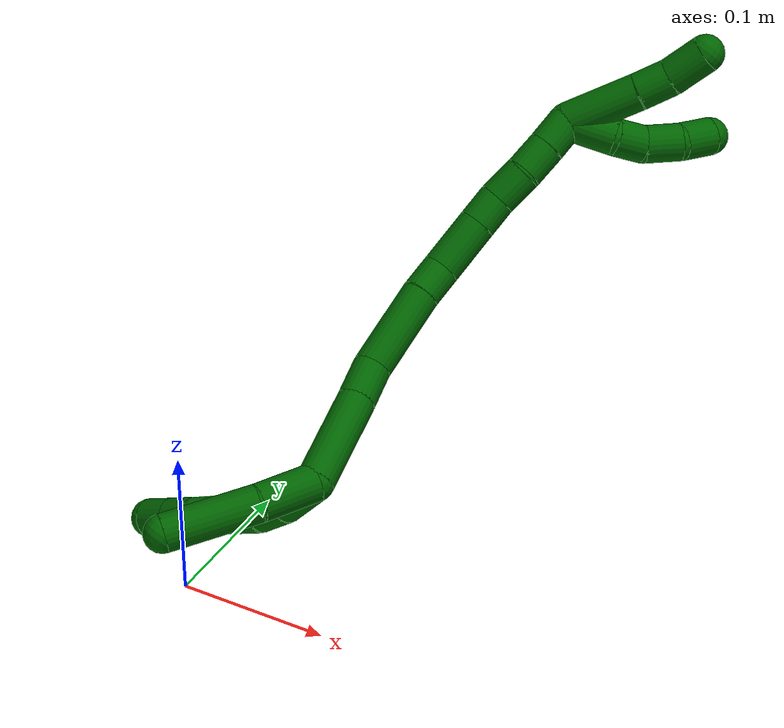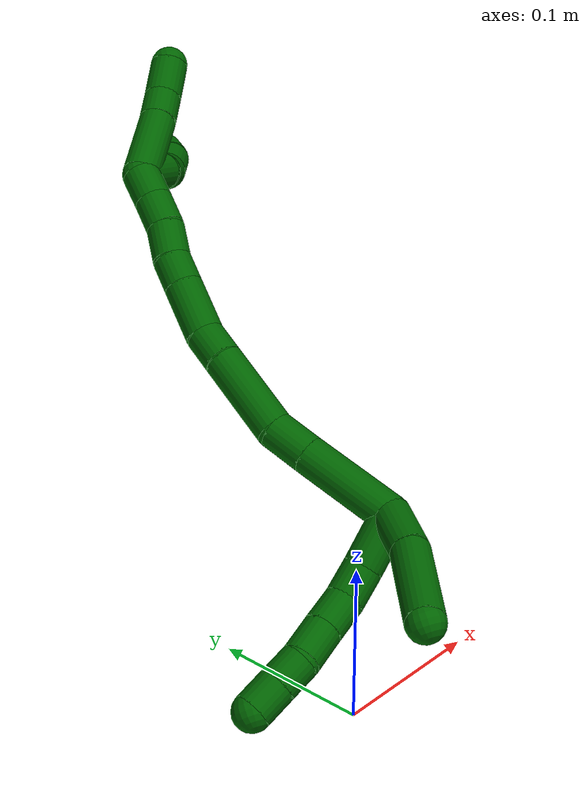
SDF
<sdf version="1.7">
 <world name="default">
  <model name="6">
   <static>0</static>
   <link name="6">
    <collision name="collision-cylinder-e_1_2_8">
     <pose>0.004038 -0.012772 -0.011999 2.325 0.226499 0.51418</pose>
     <geometry><cylinder><radius>0.0125</radius><length>0.035966</length></cylinder></geometry>
     <surface>
      <friction><ode><mu>1.16</mu><mu2>1.16</mu2><slip1>0</slip1><slip2>0</slip2></ode></friction>
      <contact><ode><kp>1e+06</kp><kd>1</kd><max_vel>0</max_vel><min_depth>0.001</min_depth></ode></contact>
     </surface>
    </collision>
    <visual name="visual-cylinder-e_1_2_8">
     <pose>0.004038 -0.012772 -0.011999 2.325 0.226499 0.51418</pose>
     <geometry><cylinder><radius>0.0125</radius><length>0.035966</length></cylinder></geometry>
     <material><ambient>0 0.392157 0.003922 1</ambient></material>
    </visual>
    <collision name="collision-cylinder-e_2_8_9">
     <pose>0.013143 -0.032367 -0.031766 2.4209 0.455601 1.10312</pose>
     <geometry><cylinder><radius>0.0125</radius><length>0.02303</length></cylinder></geometry>
     <surface>
      <friction><ode><mu>1.16</mu><mu2>1.16</mu2><slip1>0</slip1><slip2>0</slip2></ode></friction>
      <contact><ode><kp>1e+06</kp><kd>1</kd><max_vel>0</max_vel><min_depth>0.001</min_depth></ode></contact>
     </surface>
    </collision>
    <visual name="visual-cylinder-e_2_8_9">
     <pose>0.013143 -0.032367 -0.031766 2.4209 0.455601 1.10312</pose>
     <geometry><cylinder><radius>0.0125</radius><length>0.02303</length></cylinder></geometry>
     <material><ambient>0 0.392157 0.003922 1</ambient></material>
    </visual>
    <collision name="collision-cylinder-e_3_9_10">
     <pose>0.026744 -0.044448 -0.046627 2.50359 0.768492 1.77176</pose>
     <geometry><cylinder><radius>0.0125</radius><length>0.024556</length></cylinder></geometry>
     <surface>
      <friction><ode><mu>1.16</mu><mu2>1.16</mu2><slip1>0</slip1><slip2>0</slip2></ode></friction>
      <contact><ode><kp>1e+06</kp><kd>1</kd><max_vel>0</max_vel><min_depth>0.001</min_depth></ode></contact>
     </surface>
    </collision>
    <visual name="visual-cylinder-e_3_9_10">
     <pose>0.026744 -0.044448 -0.046627 2.50359 0.768492 1.77176</pose>
     <geometry><cylinder><radius>0.0125</radius><length>0.024556</length></cylinder></geometry>
     <material><ambient>0 0.392157 0.003922 1</ambient></material>
    </visual>
    <collision name="collision-cylinder-e_4_10_11">
     <pose>0.043773 -0.054832 -0.060979 2.52687 0.762799 1.80252</pose>
     <geometry><cylinder><radius>0.0125</radius><length>0.024591</length></cylinder></geometry>
     <surface>
      <friction><ode><mu>1.16</mu><mu2>1.16</mu2><slip1>0</slip1><slip2>0</slip2></ode></friction>
      <contact><ode><kp>1e+06</kp><kd>1</kd><max_vel>0</max_vel><min_depth>0.001</min_depth></ode></contact>
     </surface>
    </collision>
    <visual name="visual-cylinder-e_4_10_11">
     <pose>0.043773 -0.054832 -0.060979 2.52687 0.762799 1.80252</pose>
     <geometry><cylinder><radius>0.0125</radius><length>0.024591</length></cylinder></geometry>
     <material><ambient>0 0.392157 0.003922 1</ambient></material>
    </visual>
    <collision name="collision-cylinder-e_5_11_12">
     <pose>0.058286 -0.066534 -0.073304 2.22697 0.627254 1.16545</pose>
     <geometry><cylinder><radius>0.0125</radius><length>0.020504</length></cylinder></geometry>
     <surface>
      <friction><ode><mu>1.16</mu><mu2>1.16</mu2><slip1>0</slip1><slip2>0</slip2></ode></friction>
      <contact><ode><kp>1e+06</kp><kd>1</kd><max_vel>0</max_vel><min_depth>0.001</min_depth></ode></contact>
     </surface>
    </collision>
    <visual name="visual-cylinder-e_5_11_12">
     <pose>0.058286 -0.066534 -0.073304 2.22697 0.627254 1.16545</pose>
     <geometry><cylinder><radius>0.0125</radius><length>0.020504</length></cylinder></geometry>
     <material><ambient>0 0.392157 0.003922 1</ambient></material>
    </visual>
    <collision name="collision-cylinder-e_6_12_6">
     <pose>0.070652 -0.079866 -0.083664 2.23568 0.636901 1.19073</pose>
     <geometry><cylinder><radius>0.0125</radius><length>0.021354</length></cylinder></geometry>
     <surface>
      <friction><ode><mu>1.16</mu><mu2>1.16</mu2><slip1>0</slip1><slip2>0</slip2></ode></friction>
      <contact><ode><kp>1e+06</kp><kd>1</kd><max_vel>0</max_vel><min_depth>0.001</min_depth></ode></contact>
     </surface>
    </collision>
    <visual name="visual-cylinder-e_6_12_6">
     <pose>0.070652 -0.079866 -0.083664 2.23568 0.636901 1.19073</pose>
     <geometry><cylinder><radius>0.0125</radius><length>0.021354</length></cylinder></geometry>
     <material><ambient>0 0.392157 0.003922 1</ambient></material>
    </visual>
    <collision name="collision-cylinder-e_1_2_13">
     <pose>0.009697 0.00714 -0.014914 -2.69511 0.530379 -1.74906</pose>
     <geometry><cylinder><radius>0.0125</radius><length>0.038337</length></cylinder></geometry>
     <surface>
      <friction><ode><mu>1.16</mu><mu2>1.16</mu2><slip1>0</slip1><slip2>0</slip2></ode></friction>
      <contact><ode><kp>1e+06</kp><kd>1</kd><max_vel>0</max_vel><min_depth>0.001</min_depth></ode></contact>
     </surface>
    </collision>
    <visual name="visual-cylinder-e_1_2_13">
     <pose>0.009697 0.00714 -0.014914 -2.69511 0.530379 -1.74906</pose>
     <geometry><cylinder><radius>0.0125</radius><length>0.038337</length></cylinder></geometry>
     <material><ambient>0 0.392157 0.003922 1</ambient></material>
    </visual>
    <collision name="collision-cylinder-e_2_13_5">
     <pose>0.03726 0.020756 -0.054106 -2.88088 0.618127 -2.36239</pose>
     <geometry><cylinder><radius>0.0125</radius><length>0.061663</length></cylinder></geometry>
     <surface>
      <friction><ode><mu>1.16</mu><mu2>1.16</mu2><slip1>0</slip1><slip2>0</slip2></ode></friction>
      <contact><ode><kp>1e+06</kp><kd>1</kd><max_vel>0</max_vel><min_depth>0.001</min_depth></ode></contact>
     </surface>
    </collision>
    <visual name="visual-cylinder-e_2_13_5">
     <pose>0.03726 0.020756 -0.054106 -2.88088 0.618127 -2.36239</pose>
     <geometry><cylinder><radius>0.0125</radius><length>0.061663</length></cylinder></geometry>
     <material><ambient>0 0.392157 0.003922 1</ambient></material>
    </visual>
    <collision name="collision-cylinder-e_1_2_14">
     <pose>0.00553 -0.017244 0.026881 0.570366 0.17144 0.050375</pose>
     <geometry><cylinder><radius>0.0125</radius><length>0.064824</length></cylinder></geometry>
     <surface>
      <friction><ode><mu>1.16</mu><mu2>1.16</mu2><slip1>0</slip1><slip2>0</slip2></ode></friction>
      <contact><ode><kp>1e+06</kp><kd>1</kd><max_vel>0</max_vel><min_depth>0.001</min_depth></ode></contact>
     </surface>
    </collision>
    <visual name="visual-cylinder-e_1_2_14">
     <pose>0.00553 -0.017244 0.026881 0.570366 0.17144 0.050375</pose>
     <geometry><cylinder><radius>0.0125</radius><length>0.064824</length></cylinder></geometry>
     <material><ambient>0 0.392157 0.003922 1</ambient></material>
    </visual>
    <collision name="collision-cylinder-e_2_14_15">
     <pose>0.013762 -0.041389 0.065172 0.54397 0.200016 0.055956</pose>
     <geometry><cylinder><radius>0.0125</radius><length>0.02721</length></cylinder></geometry>
     <surface>
      <friction><ode><mu>1.16</mu><mu2>1.16</mu2><slip1>0</slip1><slip2>0</slip2></ode></friction>
      <contact><ode><kp>1e+06</kp><kd>1</kd><max_vel>0</max_vel><min_depth>0.001</min_depth></ode></contact>
     </surface>
    </collision>
    <visual name="visual-cylinder-e_2_14_15">
     <pose>0.013762 -0.041389 0.065172 0.54397 0.200016 0.055956</pose>
     <geometry><cylinder><radius>0.0125</radius><length>0.02721</length></cylinder></geometry>
     <material><ambient>0 0.392157 0.003922 1</ambient></material>
    </visual>
    <collision name="collision-cylinder-e_3_15_16">
     <pose>0.018222 -0.05713 0.104242 0.309348 0.060434 0.009426</pose>
     <geometry><cylinder><radius>0.0125</radius><length>0.058184</length></cylinder></geometry>
     <surface>
      <friction><ode><mu>1.16</mu><mu2>1.16</mu2><slip1>0</slip1><slip2>0</slip2></ode></friction>
      <contact><ode><kp>1e+06</kp><kd>1</kd><max_vel>0</max_vel><min_depth>0.001</min_depth></ode></contact>
     </surface>
    </collision>
    <visual name="visual-cylinder-e_3_15_16">
     <pose>0.018222 -0.05713 0.104242 0.309348 0.060434 0.009426</pose>
     <geometry><cylinder><radius>0.0125</radius><length>0.058184</length></cylinder></geometry>
     <material><ambient>0 0.392157 0.003922 1</ambient></material>
    </visual>
    <collision name="collision-cylinder-e_4_16_17">
     <pose>0.019769 -0.069697 0.142348 0.342639 -0.018999 -0.003287</pose>
     <geometry><cylinder><radius>0.0125</radius><length>0.022185</length></cylinder></geometry>
     <surface>
      <friction><ode><mu>1.16</mu><mu2>1.16</mu2><slip1>0</slip1><slip2>0</slip2></ode></friction>
      <contact><ode><kp>1e+06</kp><kd>1</kd><max_vel>0</max_vel><min_depth>0.001</min_depth></ode></contact>
     </surface>
    </collision>
    <visual name="visual-cylinder-e_4_16_17">
     <pose>0.019769 -0.069697 0.142348 0.342639 -0.018999 -0.003287</pose>
     <geometry><cylinder><radius>0.0125</radius><length>0.022185</length></cylinder></geometry>
     <material><ambient>0 0.392157 0.003922 1</ambient></material>
    </visual>
    <collision name="collision-cylinder-e_5_17_18">
     <pose>0.018929 -0.075804 0.171432 0.127049 -0.03348 -0.00213</pose>
     <geometry><cylinder><radius>0.0125</radius><length>0.037601</length></cylinder></geometry>
     <surface>
      <friction><ode><mu>1.16</mu><mu2>1.16</mu2><slip1>0</slip1><slip2>0</slip2></ode></friction>
      <contact><ode><kp>1e+06</kp><kd>1</kd><max_vel>0</max_vel><min_depth>0.001</min_depth></ode></contact>
     </surface>
    </collision>
    <visual name="visual-cylinder-e_5_17_18">
     <pose>0.018929 -0.075804 0.171432 0.127049 -0.03348 -0.00213</pose>
     <geometry><cylinder><radius>0.0125</radius><length>0.037601</length></cylinder></geometry>
     <material><ambient>0 0.392157 0.003922 1</ambient></material>
    </visual>
    <collision name="collision-cylinder-e_6_18_19">
     <pose>0.017907 -0.079496 0.200447 0.125734 -0.037496 -0.002361</pose>
     <geometry><cylinder><radius>0.0125</radius><length>0.020932</length></cylinder></geometry>
     <surface>
      <friction><ode><mu>1.16</mu><mu2>1.16</mu2><slip1>0</slip1><slip2>0</slip2></ode></friction>
      <contact><ode><kp>1e+06</kp><kd>1</kd><max_vel>0</max_vel><min_depth>0.001</min_depth></ode></contact>
     </surface>
    </collision>
    <visual name="visual-cylinder-e_6_18_19">
     <pose>0.017907 -0.079496 0.200447 0.125734 -0.037496 -0.002361</pose>
     <geometry><cylinder><radius>0.0125</radius><length>0.020932</length></cylinder></geometry>
     <material><ambient>0 0.392157 0.003922 1</ambient></material>
    </visual>
    <collision name="collision-cylinder-e_7_19_20">
     <pose>0.015643 -0.080577 0.222713 -0.019377 -0.156085 0.001515</pose>
     <geometry><cylinder><radius>0.0125</radius><length>0.024076</length></cylinder></geometry>
     <surface>
      <friction><ode><mu>1.16</mu><mu2>1.16</mu2><slip1>0</slip1><slip2>0</slip2></ode></friction>
      <contact><ode><kp>1e+06</kp><kd>1</kd><max_vel>0</max_vel><min_depth>0.001</min_depth></ode></contact>
     </surface>
    </collision>
    <visual name="visual-cylinder-e_7_19_20">
     <pose>0.015643 -0.080577 0.222713 -0.019377 -0.156085 0.001515</pose>
     <geometry><cylinder><radius>0.0125</radius><length>0.024076</length></cylinder></geometry>
     <material><ambient>0 0.392157 0.003922 1</ambient></material>
    </visual>
    <collision name="collision-cylinder-e_8_20_21">
     <pose>0.012871 -0.082072 0.245737 0.153738 -0.079756 -0.006146</pose>
     <geometry><cylinder><radius>0.0125</radius><length>0.022608</length></cylinder></geometry>
     <surface>
      <friction><ode><mu>1.16</mu><mu2>1.16</mu2><slip1>0</slip1><slip2>0</slip2></ode></friction>
      <contact><ode><kp>1e+06</kp><kd>1</kd><max_vel>0</max_vel><min_depth>0.001</min_depth></ode></contact>
     </surface>
    </collision>
    <visual name="visual-cylinder-e_8_20_21">
     <pose>0.012871 -0.082072 0.245737 0.153738 -0.079756 -0.006146</pose>
     <geometry><cylinder><radius>0.0125</radius><length>0.022608</length></cylinder></geometry>
     <material><ambient>0 0.392157 0.003922 1</ambient></material>
    </visual>
    <collision name="collision-cylinder-e_9_21_1">
     <pose>0.011449 -0.085611 0.267902 0.162937 -0.046626 -0.003808</pose>
     <geometry><cylinder><radius>0.0125</radius><length>0.022379</length></cylinder></geometry>
     <surface>
      <friction><ode><mu>1.16</mu><mu2>1.16</mu2><slip1>0</slip1><slip2>0</slip2></ode></friction>
      <contact><ode><kp>1e+06</kp><kd>1</kd><max_vel>0</max_vel><min_depth>0.001</min_depth></ode></contact>
     </surface>
    </collision>
    <visual name="visual-cylinder-e_9_21_1">
     <pose>0.011449 -0.085611 0.267902 0.162937 -0.046626 -0.003808</pose>
     <geometry><cylinder><radius>0.0125</radius><length>0.022379</length></cylinder></geometry>
     <material><ambient>0 0.392157 0.003922 1</ambient></material>
    </visual>
    <collision name="collision-cylinder-e_1_1_22">
     <pose>-0.004341 -0.088344 0.283801 0.186588 -1.25695 -0.135795</pose>
     <geometry><cylinder><radius>0.0125</radius><length>0.032106</length></cylinder></geometry>
     <surface>
      <friction><ode><mu>1.16</mu><mu2>1.16</mu2><slip1>0</slip1><slip2>0</slip2></ode></friction>
      <contact><ode><kp>1e+06</kp><kd>1</kd><max_vel>0</max_vel><min_depth>0.001</min_depth></ode></contact>
     </surface>
    </collision>
    <visual name="visual-cylinder-e_1_1_22">
     <pose>-0.004341 -0.088344 0.283801 0.186588 -1.25695 -0.135795</pose>
     <geometry><cylinder><radius>0.0125</radius><length>0.032106</length></cylinder></geometry>
     <material><ambient>0 0.392157 0.003922 1</ambient></material>
    </visual>
    <collision name="collision-cylinder-e_2_22_23">
     <pose>-0.028441 -0.092727 0.292498 0.735631 -1.04184 -0.435215</pose>
     <geometry><cylinder><radius>0.0125</radius><length>0.020457</length></cylinder></geometry>
     <surface>
      <friction><ode><mu>1.16</mu><mu2>1.16</mu2><slip1>0</slip1><slip2>0</slip2></ode></friction>
      <contact><ode><kp>1e+06</kp><kd>1</kd><max_vel>0</max_vel><min_depth>0.001</min_depth></ode></contact>
     </surface>
    </collision>
    <visual name="visual-cylinder-e_2_22_23">
     <pose>-0.028441 -0.092727 0.292498 0.735631 -1.04184 -0.435215</pose>
     <geometry><cylinder><radius>0.0125</radius><length>0.020457</length></cylinder></geometry>
     <material><ambient>0 0.392157 0.003922 1</ambient></material>
    </visual>
    <collision name="collision-cylinder-e_3_23_24">
     <pose>-0.046445 -0.098732 0.304262 0.309885 -0.83332 -0.138035</pose>
     <geometry><cylinder><radius>0.0125</radius><length>0.024788</length></cylinder></geometry>
     <surface>
      <friction><ode><mu>1.16</mu><mu2>1.16</mu2><slip1>0</slip1><slip2>0</slip2></ode></friction>
      <contact><ode><kp>1e+06</kp><kd>1</kd><max_vel>0</max_vel><min_depth>0.001</min_depth></ode></contact>
     </surface>
    </collision>
    <visual name="visual-cylinder-e_3_23_24">
     <pose>-0.046445 -0.098732 0.304262 0.309885 -0.83332 -0.138035</pose>
     <geometry><cylinder><radius>0.0125</radius><length>0.024788</length></cylinder></geometry>
     <material><ambient>0 0.392157 0.003922 1</ambient></material>
    </visual>
    <collision name="collision-cylinder-e_4_24_4">
     <pose>-0.062074 -0.10659 0.319834 0.608246 -0.606581 -0.195814</pose>
     <geometry><cylinder><radius>0.0125</radius><length>0.022649</length></cylinder></geometry>
     <surface>
      <friction><ode><mu>1.16</mu><mu2>1.16</mu2><slip1>0</slip1><slip2>0</slip2></ode></friction>
      <contact><ode><kp>1e+06</kp><kd>1</kd><max_vel>0</max_vel><min_depth>0.001</min_depth></ode></contact>
     </surface>
    </collision>
    <visual name="visual-cylinder-e_4_24_4">
     <pose>-0.062074 -0.10659 0.319834 0.608246 -0.606581 -0.195814</pose>
     <geometry><cylinder><radius>0.0125</radius><length>0.022649</length></cylinder></geometry>
     <material><ambient>0 0.392157 0.003922 1</ambient></material>
    </visual>
    <collision name="collision-cylinder-e_1_1_25">
     <pose>-0.002179 -0.082832 0.299718 -0.217457 -0.551869 0.061799</pose>
     <geometry><cylinder><radius>0.0125</radius><length>0.049999</length></cylinder></geometry>
     <surface>
      <friction><ode><mu>1.16</mu><mu2>1.16</mu2><slip1>0</slip1><slip2>0</slip2></ode></friction>
      <contact><ode><kp>1e+06</kp><kd>1</kd><max_vel>0</max_vel><min_depth>0.001</min_depth></ode></contact>
     </surface>
    </collision>
    <visual name="visual-cylinder-e_1_1_25">
     <pose>-0.002179 -0.082832 0.299718 -0.217457 -0.551869 0.061799</pose>
     <geometry><cylinder><radius>0.0125</radius><length>0.049999</length></cylinder></geometry>
     <material><ambient>0 0.392157 0.003922 1</ambient></material>
    </visual>
    <collision name="collision-cylinder-e_2_25_26">
     <pose>-0.020879 -0.076737 0.33018 -0.153938 -0.519011 0.040944</pose>
     <geometry><cylinder><radius>0.0125</radius><length>0.022551</length></cylinder></geometry>
     <surface>
      <friction><ode><mu>1.16</mu><mu2>1.16</mu2><slip1>0</slip1><slip2>0</slip2></ode></friction>
      <contact><ode><kp>1e+06</kp><kd>1</kd><max_vel>0</max_vel><min_depth>0.001</min_depth></ode></contact>
     </surface>
    </collision>
    <visual name="visual-cylinder-e_2_25_26">
     <pose>-0.020879 -0.076737 0.33018 -0.153938 -0.519011 0.040944</pose>
     <geometry><cylinder><radius>0.0125</radius><length>0.022551</length></cylinder></geometry>
     <material><ambient>0 0.392157 0.003922 1</ambient></material>
    </visual>
    <collision name="collision-cylinder-e_3_26_3">
     <pose>-0.031147 -0.071234 0.352123 -0.315365 -0.347599 0.055818</pose>
     <geometry><cylinder><radius>0.0125</radius><length>0.02745</length></cylinder></geometry>
     <surface>
      <friction><ode><mu>1.16</mu><mu2>1.16</mu2><slip1>0</slip1><slip2>0</slip2></ode></friction>
      <contact><ode><kp>1e+06</kp><kd>1</kd><max_vel>0</max_vel><min_depth>0.001</min_depth></ode></contact>
     </surface>
    </collision>
    <visual name="visual-cylinder-e_3_26_3">
     <pose>-0.031147 -0.071234 0.352123 -0.315365 -0.347599 0.055818</pose>
     <geometry><cylinder><radius>0.0125</radius><length>0.02745</length></cylinder></geometry>
     <material><ambient>0 0.392157 0.003922 1</ambient></material>
    </visual>
    <collision name="collision-sphere-3">
     <pose>-0.035822 -0.067231 0.364391 0 -0 0</pose>
     <geometry><sphere><radius>0.0125</radius></sphere></geometry>
     <surface>
      <friction><ode><mu>1.16</mu><mu2>1.16</mu2><slip1>0</slip1><slip2>0</slip2></ode></friction>
      <contact><ode><kp>1e+06</kp><kd>1</kd><max_vel>0</max_vel><min_depth>0.001</min_depth></ode></contact>
     </surface>
    </collision>
    <visual name="visual-sphere-3">
     <pose>-0.035822 -0.067231 0.364391 0 -0 0</pose>
     <geometry><sphere><radius>0.0125</radius></sphere></geometry>
     <material><ambient>0 0.392157 0.003922 1</ambient></material>
    </visual>
    <collision name="collision-sphere-26">
     <pose>-0.026471 -0.075236 0.339855 0 -0 0</pose>
     <geometry><sphere><radius>0.0125</radius></sphere></geometry>
     <surface>
      <friction><ode><mu>1.16</mu><mu2>1.16</mu2><slip1>0</slip1><slip2>0</slip2></ode></friction>
      <contact><ode><kp>1e+06</kp><kd>1</kd><max_vel>0</max_vel><min_depth>0.001</min_depth></ode></contact>
     </surface>
    </collision>
    <visual name="visual-sphere-26">
     <pose>-0.026471 -0.075236 0.339855 0 -0 0</pose>
     <geometry><sphere><radius>0.0125</radius></sphere></geometry>
     <material><ambient>0 0.392157 0.003922 1</ambient></material>
    </visual>
    <collision name="collision-sphere-25">
     <pose>-0.015286 -0.078239 0.320505 0 -0 0</pose>
     <geometry><sphere><radius>0.0125</radius></sphere></geometry>
     <surface>
      <friction><ode><mu>1.16</mu><mu2>1.16</mu2><slip1>0</slip1><slip2>0</slip2></ode></friction>
      <contact><ode><kp>1e+06</kp><kd>1</kd><max_vel>0</max_vel><min_depth>0.001</min_depth></ode></contact>
     </surface>
    </collision>
    <visual name="visual-sphere-25">
     <pose>-0.015286 -0.078239 0.320505 0 -0 0</pose>
     <geometry><sphere><radius>0.0125</radius></sphere></geometry>
     <material><ambient>0 0.392157 0.003922 1</ambient></material>
    </visual>
    <collision name="collision-sphere-4">
     <pose>-0.06853 -0.111907 0.32747 0 -0 0</pose>
     <geometry><sphere><radius>0.0125</radius></sphere></geometry>
     <surface>
      <friction><ode><mu>1.16</mu><mu2>1.16</mu2><slip1>0</slip1><slip2>0</slip2></ode></friction>
      <contact><ode><kp>1e+06</kp><kd>1</kd><max_vel>0</max_vel><min_depth>0.001</min_depth></ode></contact>
     </surface>
    </collision>
    <visual name="visual-sphere-4">
     <pose>-0.06853 -0.111907 0.32747 0 -0 0</pose>
     <geometry><sphere><radius>0.0125</radius></sphere></geometry>
     <material><ambient>0 0.392157 0.003922 1</ambient></material>
    </visual>
    <collision name="collision-sphere-24">
     <pose>-0.055618 -0.101273 0.312199 0 -0 0</pose>
     <geometry><sphere><radius>0.0125</radius></sphere></geometry>
     <surface>
      <friction><ode><mu>1.16</mu><mu2>1.16</mu2><slip1>0</slip1><slip2>0</slip2></ode></friction>
      <contact><ode><kp>1e+06</kp><kd>1</kd><max_vel>0</max_vel><min_depth>0.001</min_depth></ode></contact>
     </surface>
    </collision>
    <visual name="visual-sphere-24">
     <pose>-0.055618 -0.101273 0.312199 0 -0 0</pose>
     <geometry><sphere><radius>0.0125</radius></sphere></geometry>
     <material><ambient>0 0.392157 0.003922 1</ambient></material>
    </visual>
    <collision name="collision-sphere-23">
     <pose>-0.037271 -0.096191 0.296325 0 -0 0</pose>
     <geometry><sphere><radius>0.0125</radius></sphere></geometry>
     <surface>
      <friction><ode><mu>1.16</mu><mu2>1.16</mu2><slip1>0</slip1><slip2>0</slip2></ode></friction>
      <contact><ode><kp>1e+06</kp><kd>1</kd><max_vel>0</max_vel><min_depth>0.001</min_depth></ode></contact>
     </surface>
    </collision>
    <visual name="visual-sphere-23">
     <pose>-0.037271 -0.096191 0.296325 0 -0 0</pose>
     <geometry><sphere><radius>0.0125</radius></sphere></geometry>
     <material><ambient>0 0.392157 0.003922 1</ambient></material>
    </visual>
    <collision name="collision-sphere-22">
     <pose>-0.01961 -0.089263 0.288671 0 -0 0</pose>
     <geometry><sphere><radius>0.0125</radius></sphere></geometry>
     <surface>
      <friction><ode><mu>1.16</mu><mu2>1.16</mu2><slip1>0</slip1><slip2>0</slip2></ode></friction>
      <contact><ode><kp>1e+06</kp><kd>1</kd><max_vel>0</max_vel><min_depth>0.001</min_depth></ode></contact>
     </surface>
    </collision>
    <visual name="visual-sphere-22">
     <pose>-0.01961 -0.089263 0.288671 0 -0 0</pose>
     <geometry><sphere><radius>0.0125</radius></sphere></geometry>
     <material><ambient>0 0.392157 0.003922 1</ambient></material>
    </visual>
    <collision name="collision-sphere-1">
     <pose>0.010928 -0.087424 0.278932 0 -0 0</pose>
     <geometry><sphere><radius>0.0125</radius></sphere></geometry>
     <surface>
      <friction><ode><mu>1.16</mu><mu2>1.16</mu2><slip1>0</slip1><slip2>0</slip2></ode></friction>
      <contact><ode><kp>1e+06</kp><kd>1</kd><max_vel>0</max_vel><min_depth>0.001</min_depth></ode></contact>
     </surface>
    </collision>
    <visual name="visual-sphere-1">
     <pose>0.010928 -0.087424 0.278932 0 -0 0</pose>
     <geometry><sphere><radius>0.0125</radius></sphere></geometry>
     <material><ambient>0 0.392157 0.003922 1</ambient></material>
    </visual>
    <collision name="collision-sphere-21">
     <pose>0.011971 -0.083798 0.256873 0 -0 0</pose>
     <geometry><sphere><radius>0.0125</radius></sphere></geometry>
     <surface>
      <friction><ode><mu>1.16</mu><mu2>1.16</mu2><slip1>0</slip1><slip2>0</slip2></ode></friction>
      <contact><ode><kp>1e+06</kp><kd>1</kd><max_vel>0</max_vel><min_depth>0.001</min_depth></ode></contact>
     </surface>
    </collision>
    <visual name="visual-sphere-21">
     <pose>0.011971 -0.083798 0.256873 0 -0 0</pose>
     <geometry><sphere><radius>0.0125</radius></sphere></geometry>
     <material><ambient>0 0.392157 0.003922 1</ambient></material>
    </visual>
    <collision name="collision-sphere-12">
     <pose>0.064303 -0.073111 -0.078368 0 -0 0</pose>
     <geometry><sphere><radius>0.0125</radius></sphere></geometry>
     <surface>
      <friction><ode><mu>1.16</mu><mu2>1.16</mu2><slip1>0</slip1><slip2>0</slip2></ode></friction>
      <contact><ode><kp>1e+06</kp><kd>1</kd><max_vel>0</max_vel><min_depth>0.001</min_depth></ode></contact>
     </surface>
    </collision>
    <visual name="visual-sphere-12">
     <pose>0.064303 -0.073111 -0.078368 0 -0 0</pose>
     <geometry><sphere><radius>0.0125</radius></sphere></geometry>
     <material><ambient>0 0.392157 0.003922 1</ambient></material>
    </visual>
    <collision name="collision-sphere-11">
     <pose>0.052268 -0.059958 -0.06824 0 -0 0</pose>
     <geometry><sphere><radius>0.0125</radius></sphere></geometry>
     <surface>
      <friction><ode><mu>1.16</mu><mu2>1.16</mu2><slip1>0</slip1><slip2>0</slip2></ode></friction>
      <contact><ode><kp>1e+06</kp><kd>1</kd><max_vel>0</max_vel><min_depth>0.001</min_depth></ode></contact>
     </surface>
    </collision>
    <visual name="visual-sphere-11">
     <pose>0.052268 -0.059958 -0.06824 0 -0 0</pose>
     <geometry><sphere><radius>0.0125</radius></sphere></geometry>
     <material><ambient>0 0.392157 0.003922 1</ambient></material>
    </visual>
    <collision name="collision-sphere-10">
     <pose>0.035278 -0.049705 -0.053718 0 -0 0</pose>
     <geometry><sphere><radius>0.0125</radius></sphere></geometry>
     <surface>
      <friction><ode><mu>1.16</mu><mu2>1.16</mu2><slip1>0</slip1><slip2>0</slip2></ode></friction>
      <contact><ode><kp>1e+06</kp><kd>1</kd><max_vel>0</max_vel><min_depth>0.001</min_depth></ode></contact>
     </surface>
    </collision>
    <visual name="visual-sphere-10">
     <pose>0.035278 -0.049705 -0.053718 0 -0 0</pose>
     <geometry><sphere><radius>0.0125</radius></sphere></geometry>
     <material><ambient>0 0.392157 0.003922 1</ambient></material>
    </visual>
    <collision name="collision-sphere-9">
     <pose>0.01821 -0.03919 -0.039536 0 -0 0</pose>
     <geometry><sphere><radius>0.0125</radius></sphere></geometry>
     <surface>
      <friction><ode><mu>1.16</mu><mu2>1.16</mu2><slip1>0</slip1><slip2>0</slip2></ode></friction>
      <contact><ode><kp>1e+06</kp><kd>1</kd><max_vel>0</max_vel><min_depth>0.001</min_depth></ode></contact>
     </surface>
    </collision>
    <visual name="visual-sphere-9">
     <pose>0.01821 -0.03919 -0.039536 0 -0 0</pose>
     <geometry><sphere><radius>0.0125</radius></sphere></geometry>
     <material><ambient>0 0.392157 0.003922 1</ambient></material>
    </visual>
    <collision name="collision-sphere-2">
     <geometry><sphere><radius>0.0125</radius></sphere></geometry>
     <surface>
      <friction><ode><mu>1.16</mu><mu2>1.16</mu2><slip1>0</slip1><slip2>0</slip2></ode></friction>
      <contact><ode><kp>1e+06</kp><kd>1</kd><max_vel>0</max_vel><min_depth>0.001</min_depth></ode></contact>
     </surface>
    </collision>
    <visual name="visual-sphere-2">
     <geometry><sphere><radius>0.0125</radius></sphere></geometry>
     <material><ambient>0 0.392157 0.003922 1</ambient></material>
    </visual>
    <collision name="collision-sphere-19">
     <pose>0.017515 -0.080808 0.210823 0 -0 0</pose>
     <geometry><sphere><radius>0.0125</radius></sphere></geometry>
     <surface>
      <friction><ode><mu>1.16</mu><mu2>1.16</mu2><slip1>0</slip1><slip2>0</slip2></ode></friction>
      <contact><ode><kp>1e+06</kp><kd>1</kd><max_vel>0</max_vel><min_depth>0.001</min_depth></ode></contact>
     </surface>
    </collision>
    <visual name="visual-sphere-19">
     <pose>0.017515 -0.080808 0.210823 0 -0 0</pose>
     <geometry><sphere><radius>0.0125</radius></sphere></geometry>
     <material><ambient>0 0.392157 0.003922 1</ambient></material>
    </visual>
    <collision name="collision-sphere-8">
     <pose>0.008077 -0.025543 -0.023997 0 -0 0</pose>
     <geometry><sphere><radius>0.0125</radius></sphere></geometry>
     <surface>
      <friction><ode><mu>1.16</mu><mu2>1.16</mu2><slip1>0</slip1><slip2>0</slip2></ode></friction>
      <contact><ode><kp>1e+06</kp><kd>1</kd><max_vel>0</max_vel><min_depth>0.001</min_depth></ode></contact>
     </surface>
    </collision>
    <visual name="visual-sphere-8">
     <pose>0.008077 -0.025543 -0.023997 0 -0 0</pose>
     <geometry><sphere><radius>0.0125</radius></sphere></geometry>
     <material><ambient>0 0.392157 0.003922 1</ambient></material>
    </visual>
    <collision name="collision-sphere-6">
     <pose>0.077002 -0.086621 -0.08896 0 -0 0</pose>
     <geometry><sphere><radius>0.0125</radius></sphere></geometry>
     <surface>
      <friction><ode><mu>1.16</mu><mu2>1.16</mu2><slip1>0</slip1><slip2>0</slip2></ode></friction>
      <contact><ode><kp>1e+06</kp><kd>1</kd><max_vel>0</max_vel><min_depth>0.001</min_depth></ode></contact>
     </surface>
    </collision>
    <visual name="visual-sphere-6">
     <pose>0.077002 -0.086621 -0.08896 0 -0 0</pose>
     <geometry><sphere><radius>0.0125</radius></sphere></geometry>
     <material><ambient>0 0.392157 0.003922 1</ambient></material>
    </visual>
    <collision name="collision-sphere-13">
     <pose>0.019393 0.01428 -0.029829 0 -0 0</pose>
     <geometry><sphere><radius>0.0125</radius></sphere></geometry>
     <surface>
      <friction><ode><mu>1.16</mu><mu2>1.16</mu2><slip1>0</slip1><slip2>0</slip2></ode></friction>
      <contact><ode><kp>1e+06</kp><kd>1</kd><max_vel>0</max_vel><min_depth>0.001</min_depth></ode></contact>
     </surface>
    </collision>
    <visual name="visual-sphere-13">
     <pose>0.019393 0.01428 -0.029829 0 -0 0</pose>
     <geometry><sphere><radius>0.0125</radius></sphere></geometry>
     <material><ambient>0 0.392157 0.003922 1</ambient></material>
    </visual>
    <collision name="collision-sphere-5">
     <pose>0.055127 0.027233 -0.078383 0 -0 0</pose>
     <geometry><sphere><radius>0.0125</radius></sphere></geometry>
     <surface>
      <friction><ode><mu>1.16</mu><mu2>1.16</mu2><slip1>0</slip1><slip2>0</slip2></ode></friction>
      <contact><ode><kp>1e+06</kp><kd>1</kd><max_vel>0</max_vel><min_depth>0.001</min_depth></ode></contact>
     </surface>
    </collision>
    <visual name="visual-sphere-5">
     <pose>0.055127 0.027233 -0.078383 0 -0 0</pose>
     <geometry><sphere><radius>0.0125</radius></sphere></geometry>
     <material><ambient>0 0.392157 0.003922 1</ambient></material>
    </visual>
    <collision name="collision-sphere-14">
     <pose>0.011059 -0.034488 0.053763 0 -0 0</pose>
     <geometry><sphere><radius>0.0125</radius></sphere></geometry>
     <surface>
      <friction><ode><mu>1.16</mu><mu2>1.16</mu2><slip1>0</slip1><slip2>0</slip2></ode></friction>
      <contact><ode><kp>1e+06</kp><kd>1</kd><max_vel>0</max_vel><min_depth>0.001</min_depth></ode></contact>
     </surface>
    </collision>
    <visual name="visual-sphere-14">
     <pose>0.011059 -0.034488 0.053763 0 -0 0</pose>
     <geometry><sphere><radius>0.0125</radius></sphere></geometry>
     <material><ambient>0 0.392157 0.003922 1</ambient></material>
    </visual>
    <collision name="collision-sphere-15">
     <pose>0.016465 -0.04829 0.076581 0 -0 0</pose>
     <geometry><sphere><radius>0.0125</radius></sphere></geometry>
     <surface>
      <friction><ode><mu>1.16</mu><mu2>1.16</mu2><slip1>0</slip1><slip2>0</slip2></ode></friction>
      <contact><ode><kp>1e+06</kp><kd>1</kd><max_vel>0</max_vel><min_depth>0.001</min_depth></ode></contact>
     </surface>
    </collision>
    <visual name="visual-sphere-15">
     <pose>0.016465 -0.04829 0.076581 0 -0 0</pose>
     <geometry><sphere><radius>0.0125</radius></sphere></geometry>
     <material><ambient>0 0.392157 0.003922 1</ambient></material>
    </visual>
    <collision name="collision-sphere-16">
     <pose>0.019979 -0.065971 0.131902 0 -0 0</pose>
     <geometry><sphere><radius>0.0125</radius></sphere></geometry>
     <surface>
      <friction><ode><mu>1.16</mu><mu2>1.16</mu2><slip1>0</slip1><slip2>0</slip2></ode></friction>
      <contact><ode><kp>1e+06</kp><kd>1</kd><max_vel>0</max_vel><min_depth>0.001</min_depth></ode></contact>
     </surface>
    </collision>
    <visual name="visual-sphere-16">
     <pose>0.019979 -0.065971 0.131902 0 -0 0</pose>
     <geometry><sphere><radius>0.0125</radius></sphere></geometry>
     <material><ambient>0 0.392157 0.003922 1</ambient></material>
    </visual>
    <collision name="collision-sphere-17">
     <pose>0.019558 -0.073423 0.152794 0 -0 0</pose>
     <geometry><sphere><radius>0.0125</radius></sphere></geometry>
     <surface>
      <friction><ode><mu>1.16</mu><mu2>1.16</mu2><slip1>0</slip1><slip2>0</slip2></ode></friction>
      <contact><ode><kp>1e+06</kp><kd>1</kd><max_vel>0</max_vel><min_depth>0.001</min_depth></ode></contact>
     </surface>
    </collision>
    <visual name="visual-sphere-17">
     <pose>0.019558 -0.073423 0.152794 0 -0 0</pose>
     <geometry><sphere><radius>0.0125</radius></sphere></geometry>
     <material><ambient>0 0.392157 0.003922 1</ambient></material>
    </visual>
    <collision name="collision-sphere-18">
     <pose>0.018299 -0.078185 0.190071 0 -0 0</pose>
     <geometry><sphere><radius>0.0125</radius></sphere></geometry>
     <surface>
      <friction><ode><mu>1.16</mu><mu2>1.16</mu2><slip1>0</slip1><slip2>0</slip2></ode></friction>
      <contact><ode><kp>1e+06</kp><kd>1</kd><max_vel>0</max_vel><min_depth>0.001</min_depth></ode></contact>
     </surface>
    </collision>
    <visual name="visual-sphere-18">
     <pose>0.018299 -0.078185 0.190071 0 -0 0</pose>
     <geometry><sphere><radius>0.0125</radius></sphere></geometry>
     <material><ambient>0 0.392157 0.003922 1</ambient></material>
    </visual>
    <collision name="collision-sphere-20">
     <pose>0.013772 -0.080347 0.234602 0 -0 0</pose>
     <geometry><sphere><radius>0.0125</radius></sphere></geometry>
     <surface>
      <friction><ode><mu>1.16</mu><mu2>1.16</mu2><slip1>0</slip1><slip2>0</slip2></ode></friction>
      <contact><ode><kp>1e+06</kp><kd>1</kd><max_vel>0</max_vel><min_depth>0.001</min_depth></ode></contact>
     </surface>
    </collision>
    <visual name="visual-sphere-20">
     <pose>0.013772 -0.080347 0.234602 0 -0 0</pose>
     <geometry><sphere><radius>0.0125</radius></sphere></geometry>
     <material><ambient>0 0.392157 0.003922 1</ambient></material>
    </visual>
    <inertial>
     <pose>0.009444 -0.05323 0.12169 0 -0 0</pose>
     <mass>0.75</mass>
     <inertia><ixx>6.7e-05</ixx><ixy>0</ixy><ixz>0</ixz><iyy>8.3e-05</iyy><iyz>0</iyz><izz>3.1e-05</izz></inertia>
    </inertial>
   </link>
   <pose>0.076232 0.036672 0.087138 0.71861 -0.477263 -3.07506</pose>
  </model>
 </world>
</sdf>
